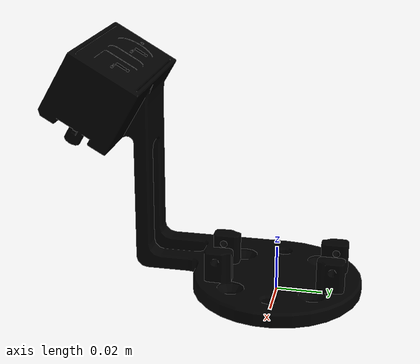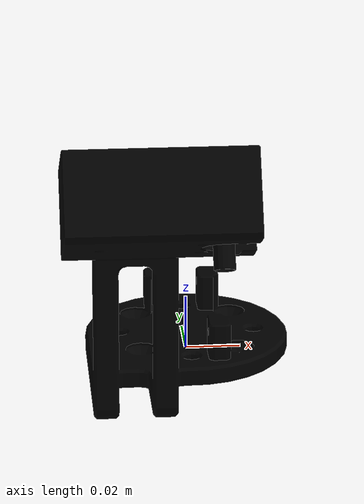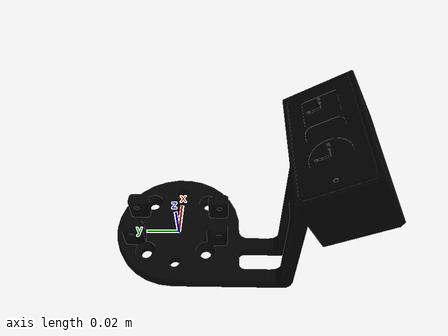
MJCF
<mujoco model="camera_link">
  <default>
    <default class="visual">
      <geom group="2" type="mesh" contype="0" conaffinity="0"/>
    </default>
    <default class="collision">
      <geom group="3" type="mesh"/>
    </default>
  </default>
  <asset>
    <material name="material_camera_link_0" specular="0.20000000000000004" shininess="1.0" rgba="0.00000000 0.00000000 0.00000000 1.0"/>
    <mesh file="camera_link.obj"/>
  </asset>
  <worldbody>
    <body name="camera_link">
      <geom material="material_camera_link_0" mesh="camera_link" class="visual"/>
      <geom mesh="camera_link" class="collision"/>
    </body>
  </worldbody>
</mujoco>
